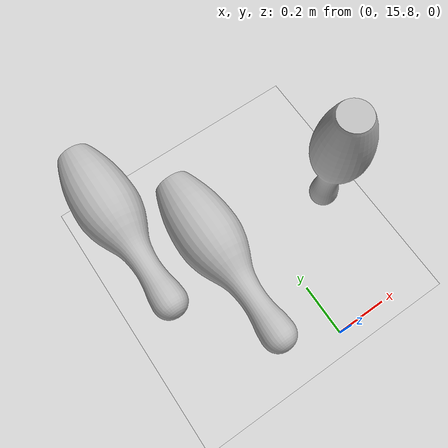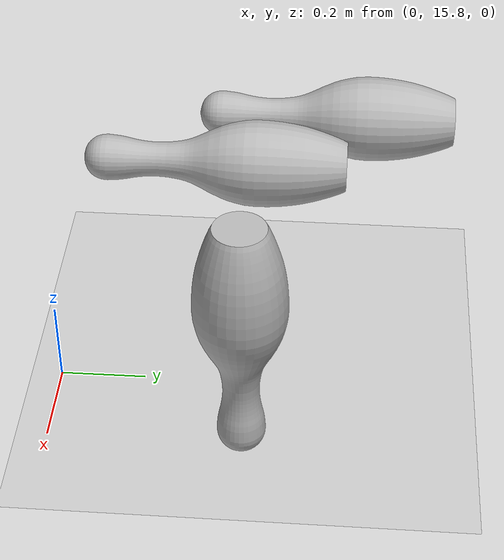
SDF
<sdf version="1.7">
 <world name="default">
  <model name="ground_plane">
   <static>1</static>
   <link name="link">
    <collision name="collision">
     <geometry><plane><normal>0 0 1</normal><size>50 100</size></plane></geometry>
     <surface>
      <contact><collide_bitmask>65535</collide_bitmask></contact>
      <friction><ode><mu>100</mu><mu2>50</mu2></ode></friction>
     </surface>
    </collision>
    <visual name="visual">
     <cast_shadows>0</cast_shadows>
     <geometry><plane><normal>0 0 1</normal><size>50 100</size></plane></geometry>
     <material>
      <script><uri>file://media/materials/scripts/gazebo.material</uri><name>Gazebo/Grey</name></script>
     </material>
    </visual>
   </link>
  </model>
  <model name="bowling_pin_clone">
   <link name="link_0">
    <inertial>
     <mass>1.6</mass>
     <inertia>
      <ixx>0.000212</ixx>
      <ixy>0</ixy>
      <ixz>0</ixz>
      <iyy>3.4e-05</iyy>
      <iyz>0</iyz>
      <izz>0.000212</izz>
     </inertia>
    </inertial>
    <pose>0 0 0 1.5707 -0 0</pose>
    <visual name="visual">
     <geometry>
      <mesh><uri>model://bowling_pin_black/meshes/bowling-pin-black.obj</uri><scale>1 1 1</scale></mesh>
     </geometry>
    </visual>
    <collision name="collision">
     <geometry>
      <mesh><uri>model://bowling_pin_black/meshes/bowling-pin-black.obj</uri><scale>1 1 1</scale></mesh>
     </geometry>
     <surface>
      <friction>
       <ode><mu>0.4</mu><mu2>0.4</mu2><fdir1>0 0 0</fdir1><slip1>0</slip1><slip2>0</slip2></ode>
       <torsional>
        <coefficient>1</coefficient>
        <patch_radius>0</patch_radius>
        <surface_radius>0</surface_radius>
        <use_patch_radius>1</use_patch_radius>
        <ode><slip>0</slip></ode>
       </torsional>
      </friction>
      <bounce><restitution_coefficient>0</restitution_coefficient><threshold>1e+06</threshold></bounce>
      <contact>
       <collide_without_contact>0</collide_without_contact>
       <collide_without_contact_bitmask>1</collide_without_contact_bitmask>
       <collide_bitmask>1</collide_bitmask>
       <ode>
        <soft_cfm>0</soft_cfm>
        <soft_erp>0.2</soft_erp>
        <kp>1e+13</kp>
        <kd>1</kd>
        <max_vel>1</max_vel>
        <min_depth>0</min_depth>
       </ode>
       <bullet>
        <split_impulse>1</split_impulse>
        <split_impulse_penetration_threshold>-0.01</split_impulse_penetration_threshold>
        <soft_cfm>0</soft_cfm>
        <soft_erp>0.2</soft_erp>
        <kp>1e+13</kp>
        <kd>1</kd>
       </bullet>
      </contact>
     </surface>
    </collision>
   </link>
   <static>0</static>
   <pose>-0.25 16.25 0.458044 1.57068 0 0</pose>
  </model>
  <model name="bowling_pin_clone_0">
   <link name="link_0">
    <inertial>
     <mass>1.6</mass>
     <inertia>
      <ixx>0.000212</ixx>
      <ixy>0</ixy>
      <ixz>0</ixz>
      <iyy>3.4e-05</iyy>
      <iyz>0</iyz>
      <izz>0.000212</izz>
     </inertia>
    </inertial>
    <pose>0 0 0 1.5707 -0 0</pose>
    <visual name="visual">
     <geometry>
      <mesh><uri>model://bowling_pin_black/meshes/bowling-pin-black.obj</uri><scale>1 1 1</scale></mesh>
     </geometry>
    </visual>
    <collision name="collision">
     <geometry>
      <mesh><uri>model://bowling_pin_black/meshes/bowling-pin-black.obj</uri><scale>1 1 1</scale></mesh>
     </geometry>
     <surface>
      <friction>
       <ode><mu>0.4</mu><mu2>0.4</mu2><fdir1>0 0 0</fdir1><slip1>0</slip1><slip2>0</slip2></ode>
       <torsional>
        <coefficient>1</coefficient>
        <patch_radius>0</patch_radius>
        <surface_radius>0</surface_radius>
        <use_patch_radius>1</use_patch_radius>
        <ode><slip>0</slip></ode>
       </torsional>
      </friction>
      <bounce><restitution_coefficient>0</restitution_coefficient><threshold>1e+06</threshold></bounce>
      <contact>
       <collide_without_contact>0</collide_without_contact>
       <collide_without_contact_bitmask>1</collide_without_contact_bitmask>
       <collide_bitmask>1</collide_bitmask>
       <ode>
        <soft_cfm>0</soft_cfm>
        <soft_erp>0.2</soft_erp>
        <kp>1e+13</kp>
        <kd>1</kd>
        <max_vel>1</max_vel>
        <min_depth>0</min_depth>
       </ode>
       <bullet>
        <split_impulse>1</split_impulse>
        <split_impulse_penetration_threshold>-0.01</split_impulse_penetration_threshold>
        <soft_cfm>0</soft_cfm>
        <soft_erp>0.2</soft_erp>
        <kp>1e+13</kp>
        <kd>1</kd>
       </bullet>
      </contact>
     </surface>
    </collision>
   </link>
   <static>0</static>
   <pose>0.25 16.25 0.458106 -2.7e-05 1.57068 0 0</pose>
  </model>
  <model name="bowling_pin_clone_1">
   <link name="link_0">
    <inertial>
     <mass>1.6</mass>
     <inertia>
      <ixx>0.000212</ixx>
      <ixy>0</ixy>
      <ixz>0</ixz>
      <iyy>3.4e-05</iyy>
      <iyz>0</iyz>
      <izz>0.000212</izz>
     </inertia>
    </inertial>
    <pose>0 0 0 1.5707 -0 0</pose>
    <visual name="visual">
     <geometry>
      <mesh><uri>model://bowling_pin_black/meshes/bowling-pin-black.obj</uri><scale>1 1 1</scale></mesh>
     </geometry>
    </visual>
    <collision name="collision">
     <geometry>
      <mesh><uri>model://bowling_pin_black/meshes/bowling-pin-black.obj</uri><scale>1 1 1</scale></mesh>
     </geometry>
     <surface>
      <friction>
       <ode><mu>0.4</mu><mu2>0.4</mu2><fdir1>0 0 0</fdir1><slip1>0</slip1><slip2>0</slip2></ode>
       <torsional>
        <coefficient>1</coefficient>
        <patch_radius>0</patch_radius>
        <surface_radius>0</surface_radius>
        <use_patch_radius>1</use_patch_radius>
        <ode><slip>0</slip></ode>
       </torsional>
      </friction>
      <bounce><restitution_coefficient>0</restitution_coefficient><threshold>1e+06</threshold></bounce>
      <contact>
       <collide_without_contact>0</collide_without_contact>
       <collide_without_contact_bitmask>1</collide_without_contact_bitmask>
       <collide_bitmask>1</collide_bitmask>
       <ode>
        <soft_cfm>0</soft_cfm>
        <soft_erp>0.2</soft_erp>
        <kp>1e+13</kp>
        <kd>1</kd>
        <max_vel>1</max_vel>
        <min_depth>0</min_depth>
       </ode>
       <bullet>
        <split_impulse>1</split_impulse>
        <split_impulse_penetration_threshold>-0.01</split_impulse_penetration_threshold>
        <soft_cfm>0</soft_cfm>
        <soft_erp>0.2</soft_erp>
        <kp>1e+13</kp>
        <kd>1</kd>
       </bullet>
      </contact>
     </surface>
    </collision>
   </link>
   <static>0</static>
   <pose>-0.45 16.5 0.458039 1.57068 0 0</pose>
  </model>
 </world>
</sdf>
